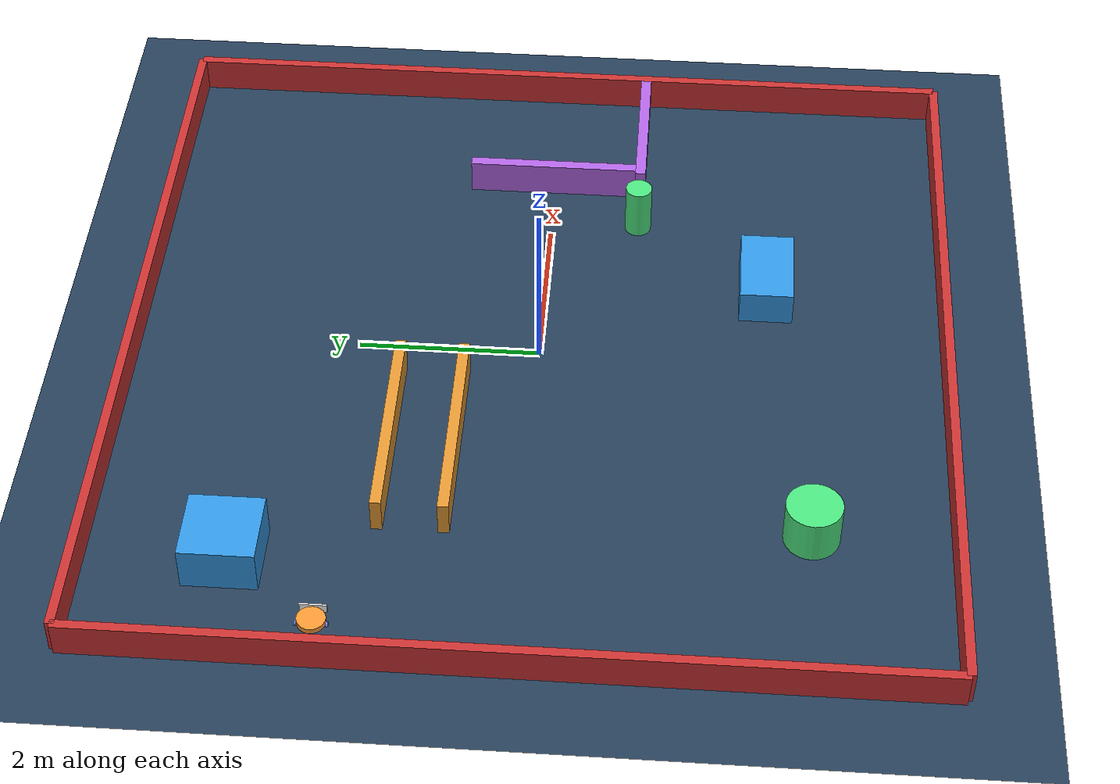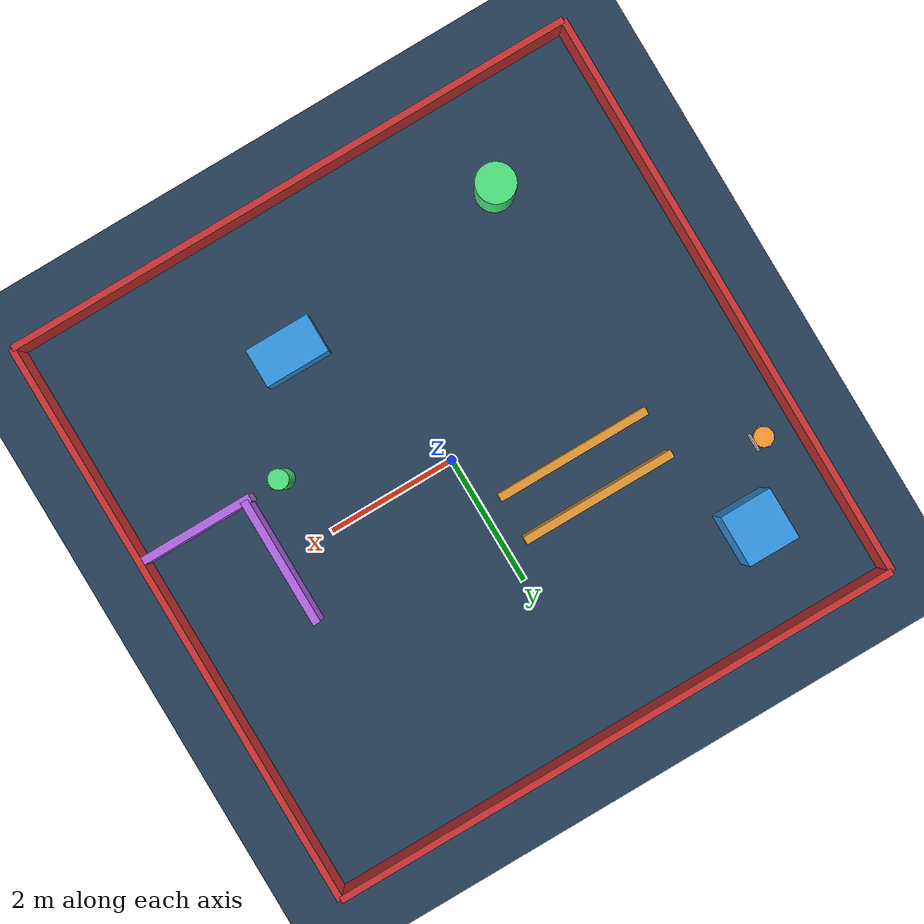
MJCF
<mujoco>
  <compiler autolimits="true"/>

  <visual>
    <global offheight="720" offwidth="1280"/>
    <quality offsamples="8"/>
  </visual>

  <asset>
    <texture name="grid" type="2d" builtin="checker" width="512" height="512" rgb1=".1 .2 .3" rgb2=".2 .3 .4"/>
    <material name="grid" texture="grid" texrepeat="1 1" texuniform="true" reflectance=".2"/>
    <mesh name="chasis" scale=".01 .006 .0015"
      vertex=" 9   2   0
              -10  10  10
               9  -2   0
               10  3  -10
               10 -3  -10
              -8   10 -10
              -10 -10  10
              -8  -10 -10
              -5   0   20"/>
  </asset>

  <default>
    <joint damping=".03" actuatorfrcrange="-0.5 0.5"/>
    <default class="wheel">
        <geom type="cylinder" size=".03 .01" rgba=".5 .5 1 1"/>
    </default>
    <default class="decor">
        <site type="box" rgba=".5 1 .5 1"/>
    </default>
</default>

<worldbody>
  <geom type="plane" size="6 6 .01" material="grid"/>

  <body name="pusher1" pos="-4.0 2.0 .03">

    <freejoint/>
    <geom name="base"
            type="cylinder"
            pos="0 0 0.03"
            size="0.15 0.03"
            rgba="1.0 0.6 0.2 1"
            margin="0.02"/>

    <geom type="box" pos="0.16 0 0.03" size="0.01 0.14 0.05" rgba="1 1 1 1"/>

    <geom name="front wheel" pos="0.12 0 -.015" type="sphere" size=".015" condim="1" priority="1"/>

    <body name="left wheel" pos="-.02 .16 0" zaxis="0 1 0" >
      <joint name="left"/>
      <geom class="wheel" />
      <site class="decor" size=".006 .025 .012"/>
      <site class="decor" size=".025 .006 .012"/>
    </body>

    <body name="right wheel" pos="-.02 -.16 0" zaxis="0 1 0">
      <joint name="right"/>
      <geom class="wheel" />
      <site class="decor" size=".006 .025 .012"/>
      <site class="decor" size=".025 .006 .012"/>
    </body>

  </body>

  <!-- 四周围墙 -->
  <geom name="ob_wall_north" type="box" pos="0 4.5 0.2" size="4.5 0.05 0.2" rgba=".8 .2 .2 1"/>
  <geom name="ob_wall_south" type="box" pos="0 -4.5 0.2" size="4.5 0.05 0.2" rgba=".8 .2 .2 1"/>
  <geom name="ob_wall_west"  type="box" pos="-4.5 0 0.2" size="0.05 4.5 0.2" rgba=".8 .2 .2 1"/>
  <geom name="ob_wall_east"  type="box" pos="4.5 0 0.2"  size="0.05 4.5 0.2" rgba=".8 .2 .2 1"/>

  <!-- 走廊（两条平行长条墙，留中间通道） -->
  <geom name="ob_corridor_1" type="box" pos="-1.5 1.5 0.2" size="1.2 0.06 0.2" rgba=".9 .6 .2 1"/>
  <geom name="ob_corridor_2" type="box" pos="-1.5 0.8 0.2"  size="1.2 0.06 0.2" rgba=".9 .6 .2 1"/>

  <!-- 方块障碍 -->
  <geom name="ob_box_1" type="box" pos="-3.2 3.0 0.25" size="0.4 0.4 0.25" rgba=".2 .6 .9 1"/>
  <geom name="ob_box_2" type="box" pos=" 1.2 -2.5 0.20" size="0.5 0.3 0.20" rgba=".2 .6 .9 1"/>

  <!-- 圆柱障碍/立柱 -->
  <geom name="ob_cyl_1" type="cylinder" pos="-2.5 -3.0 0.25" size="0.30 0.25" rgba=".3 .9 .5 1"/>
  <geom name="ob_pillar" type="cylinder" pos="2.2 -1.0 0.30" size="0.15 0.30" rgba=".3 .9 .5 1"/>

  <!-- L 形转角（两块窄墙） -->
  <geom name="ob_L_1" type="box" pos="2.8 0.0 0.2"  size="0.06 1.0 0.2" rgba=".7 .4 .9 1"/>
  <geom name="ob_L_2" type="box" pos="3.6 -1.0 0.2" size="0.9 0.06 0.2" rgba=".7 .4 .9 1"/>

  <!-- 添加多个相机定义 -->
  <camera name="top_down" mode="fixed" pos="0 0 10" xyaxes="1 0 0 0 1 0"/>
  <camera name="angled_top" mode="fixed" pos="8 0 6" xyaxes="0 -1 0 0 0 1"/>
  <camera name="side" mode="fixed" pos="0 8 0" xyaxes="1 0 0 0 0 1"/>
  <camera name="follow" mode="trackcom" pos="0 0 5" xyaxes="1 0 0 0 1 0"/>

</worldbody>

<tendon>
  <fixed name="forward">
    <joint joint="left" coef=".5"/>
    <joint joint="right" coef=".5"/>
  </fixed>
  <fixed name="turn">
    <joint joint="left" coef="-.5"/>
    <joint joint="right" coef=".5"/>
  </fixed>
</tendon>

<actuator>
  <motor name="forward" tendon="forward" ctrlrange="-1 1"/>
  <motor name="turn" tendon="turn" ctrlrange="-1 1"/>
</actuator>

<sensor>
    <jointactuatorfrc name="right" joint="right"/>
    <jointactuatorfrc name="left" joint="left"/>
  </sensor>
</mujoco>
